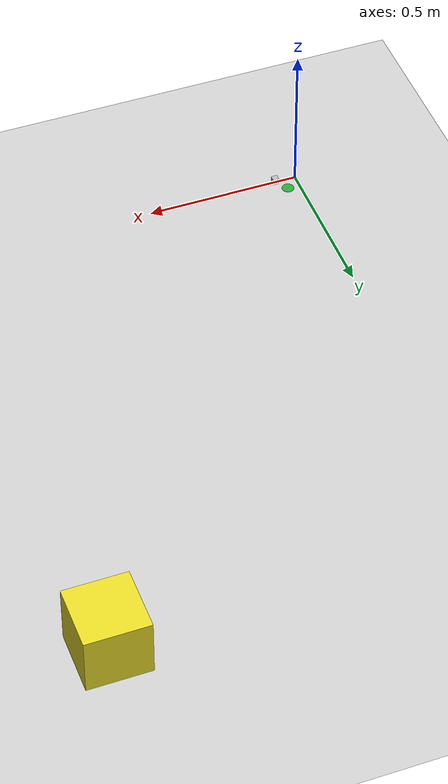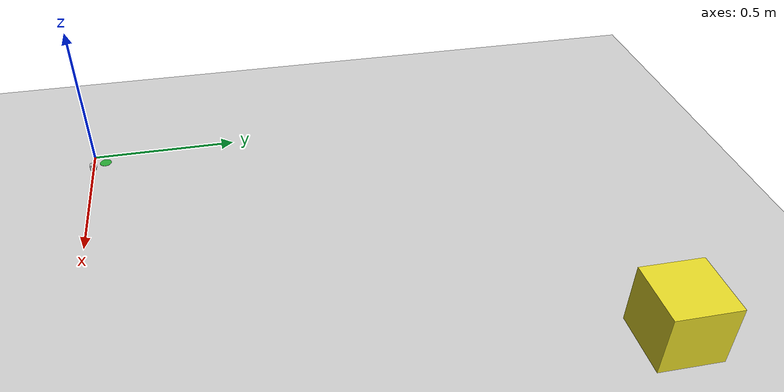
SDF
<?xml version="1.0" ?>

<sdf version="1.6">

  <world name="r4_arm_base">

    <gravity>0 0 -9.81</gravity>
    <physics name="default_physics" default="0" type="ode">
      <max_step_size>0.001</max_step_size>
      <real_time_factor>1</real_time_factor>
      <real_time_update_rate>1000</real_time_update_rate>
    </physics>

    <scene>
      <ambient>0.4 0.4 0.4 1</ambient>
      <background>0.7 0.7 0.7 1</background>
      <shadows>0</shadows>
    </scene>

    <!-- Light Source -->
    <include>
      <uri>model://sun</uri>
    </include>

    <!-- A ground plane -->
    <include>
      <uri>model://ground_plane</uri>
      <pose>0 0 0 0 0 0</pose>
    </include>

    <!-- A box simulating the rover -->
    <model name="rover_box">
      <include>
        <uri>model://robot_box</uri>
      </include>
      <pose>1.2 1.64 0.1 0 0 0</pose>
      <static>true</static>
    </model>

  <model name="target">
    <pose>0.04 0.04 0.00 0 0 0</pose>
    <static>true</static>
    <link name="box">
      <pose>0.0 0.0 0.0 0 0 0</pose>
      <visual name="visual">
        <geometry>
          <cylinder>
            <radius>0.02</radius>
            <length>0.001</length>
          </cylinder>
        </geometry>
        <material>
          <script>
            <uri>file://media/materials/scripts/gazebo.material</uri>
            <name>Gazebo/Green </name>
          </script>
        </material>
      </visual>
    </link>

  </model>

    <!-- die to roll -->
    <model name="die">
      <include>
        <uri>model://die</uri>
      </include>
      <pose>0.07 0.0 0.01 0 0 0</pose>
      <static>false</static>
    </model>

    <gui fullscreen='0'>
      <camera name='user_camera'>
        <pose>-0.5 0 0.5  0 0.77 0</pose>
        <view_controller>orbit</view_controller>
        <projection_type>perspective</projection_type>
      </camera>
    </gui>

  </world>
</sdf>

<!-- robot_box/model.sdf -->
<sdf version="1.5">

  <model name="robot_box">
    <static>true</static>
    <link name="box">
      <pose>0.0 0.0 0.0 0 0 0</pose>
      <collision name="collision">
        <geometry>
          <box>
            <size>0.2 0.2 0.2</size>
          </box>
        </geometry>
      </collision>
      <visual name="visual">
        <geometry>
          <box>
            <size>0.2 0.2 0.2</size>
          </box>
        </geometry>
        <material>
          <script>
            <uri>file://media/materials/scripts/gazebo.material</uri>
            <name>Gazebo/DarkYellow </name>
          </script>
        </material>
      </visual>
    </link>

  </model>

</sdf>

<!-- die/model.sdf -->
<sdf version="1.6">
  <model name="die">
    <static>false</static>
    <link name="link">

      <inertial>
        <mass>0.010</mass>
        <inertia>
          <ixx>6.67e-08</ixx>  <!-- rolls better: 0.1 * mass / 12.0 * (y*y+z*z) -->
          <ixy>0</ixy>
          <ixz>0</ixz>
          <iyy>6.67e-08</iyy>
          <iyz>0</iyz>
          <izz>6.67e-08</izz>
        </inertia>
      </inertial>

      <collision name="collision">
        <geometry>
          <box>
            <size>0.02 0.02 0.02</size>
          </box>
        </geometry>
         <surface>
           <friction>
             <ode>
               <mu>2.5</mu>
               <mu2>2.5</mu2>
             </ode>
           </friction>
         </surface>

      </collision>

      <visual name="top">
        <pose>-0.01 0 0.01 0 1.571 0</pose>
        <geometry>
          <mesh>
            <uri>model://die/meshes/Marker1.dae</uri>
            <scale>0.001 0.04 0.04</scale>
          </mesh>
        </geometry>
      </visual>
      <visual name="bottom">
        <pose>-0.01 0 -0.01 0 1.571 0</pose>
        <geometry>
          <mesh>
            <uri>model://die/meshes/Marker6.dae</uri>
            <scale>0.001 0.04 0.04</scale>
          </mesh>
        </geometry>
      </visual>
      <visual name="right">
        <pose>0.01 0 -0.01 0 0 0</pose>
        <geometry>
          <mesh>
            <uri>model://die/meshes/Marker2.dae</uri>
            <scale>0.001 0.04 0.04</scale>
          </mesh>
        </geometry>
      </visual>
      <visual name="left">
        <pose>-0.01 0 -0.01 0 0 0</pose>
        <geometry>
          <mesh>
            <uri>model://die/meshes/Marker5.dae</uri>
            <scale>0.001 0.04 0.04</scale>
          </mesh>
        </geometry>
      </visual>
      <visual name="front">
        <pose>0 -0.01 -0.01 0 0 1.571</pose>
        <geometry>
          <mesh>
            <uri>model://die/meshes/Marker3.dae</uri>
            <scale>0.001 0.04 0.04</scale>
          </mesh>
        </geometry>
      </visual>
      <visual name="rear">
        <pose>0 0.01 -0.01 0 0 1.571</pose>
        <geometry>
          <mesh>
            <uri>model://die/meshes/Marker4.dae</uri>
            <scale>0.001 0.04 0.04</scale>
          </mesh>
        </geometry>
      </visual>

    </link>
  </model>
</sdf>
